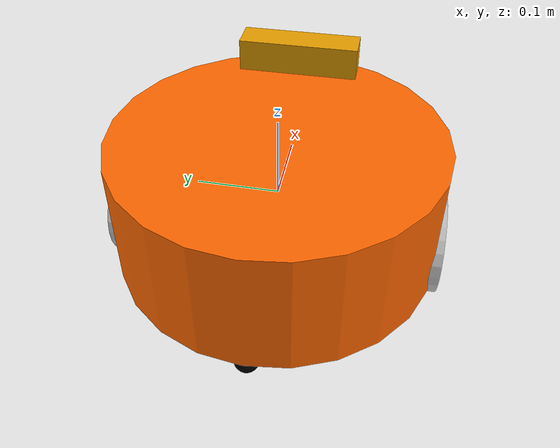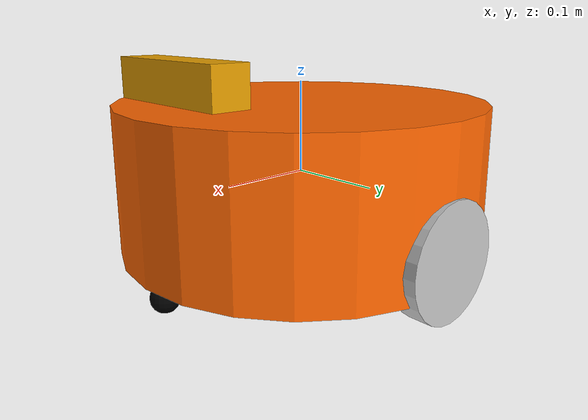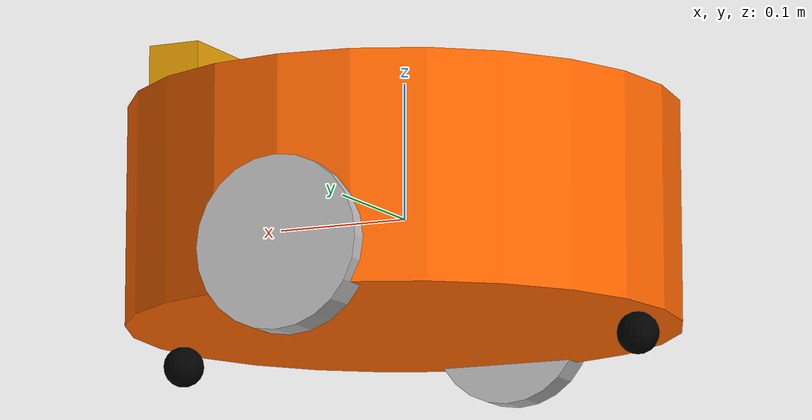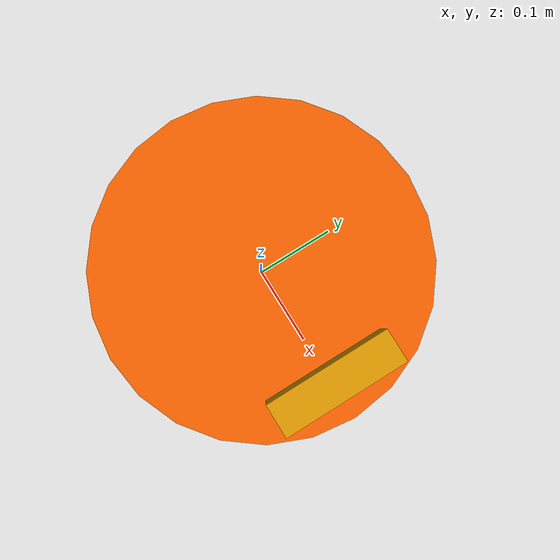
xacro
<?xml version="1.0"?>
<robot name="mbot" xmlns:xacro="http://www.ros.org/wiki/xacro">

    <xacro:include filename="$(find learning_gazebo_harmonic)/urdf/mbot_base_gazebo_harmonic.xacro" />
    <xacro:include filename="$(find learning_gazebo_harmonic)/urdf/sensors/rgbd_gazebo_harmonic.xacro" />

    <xacro:property name="rgbd_offset_x" value="0.15" />
    <xacro:property name="rgbd_offset_y" value="0" />
    <xacro:property name="rgbd_offset_z" value="0.11" />

    <!-- rgbd -->
    <joint name="rgbd_joint" type="fixed">
        <origin xyz="${rgbd_offset_x} ${rgbd_offset_y} ${rgbd_offset_z}" rpy="0 0 0" />
        <parent link="base_link"/>
        <child link="rgbd_link"/>
    </joint>

    <xacro:rgbd_camera prefix="rgbd"/>

    <xacro:mbot_base_gazebo/>

</robot>

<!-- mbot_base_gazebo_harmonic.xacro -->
<robot name="mbot" xmlns:xacro="http://www.ros.org/wiki/xacro">
    <!-- PROPERTY LIST -->
    <xacro:property name="M_PI" value="3.1415926"/>
    <xacro:property name="base_mass"   value="1" />
    <xacro:property name="base_radius" value="0.20"/>
    <xacro:property name="base_length" value="0.16"/>

    <xacro:property name="wheel_mass"   value="0.2" />
    <xacro:property name="wheel_radius" value="0.06"/>
    <xacro:property name="wheel_length" value="0.025"/>
    <xacro:property name="wheel_joint_y" value="0.19"/>
    <xacro:property name="wheel_joint_z" value="0.05"/>

    <xacro:property name="caster_mass"    value="0.2" />
    <xacro:property name="caster_radius"  value="0.015"/> <!-- wheel_radius - ( base_length/2 - wheel_joint_z) -->
    <xacro:property name="caster_joint_x" value="0.18"/>

    <!-- Defining the colors used in this robot -->
    <material name="yellow">
        <color rgba="1 0.4 0 1"/>
    </material>
    <material name="black">
        <color rgba="0 0 0 0.95"/>
    </material>
    <material name="gray">
        <color rgba="0.75 0.75 0.75 1"/>
    </material>

    <!-- Macro for inertia matrix -->
    <xacro:macro name="sphere_inertial_matrix" params="m r">
        <inertial>
            <origin xyz="0 0 0" rpy="0 0 0"/>
            <mass value="${m}" />
            <inertia ixx="${2*m*r*r/5}" ixy="0" ixz="0"
                iyy="${2*m*r*r/5}" iyz="0"
                izz="${2*m*r*r/5}" />
        </inertial>
    </xacro:macro>

    <xacro:macro name="cylinder_inertial_matrix" params="m r h">
        <inertial>
            <origin xyz="0 0 0" rpy="0 0 0"/>
            <mass value="${m}" />
            <inertia ixx="${m*(3*r*r+h*h)/12}" ixy = "0" ixz = "0"
                iyy="${m*(3*r*r+h*h)/12}" iyz = "0"
                izz="${m*r*r/2}" />
        </inertial>
    </xacro:macro>

    <!-- Macro for robot wheel -->
    <xacro:macro name="wheel" params="prefix reflect">
        <joint name="${prefix}_wheel_joint" type="continuous">
            <origin xyz="0 ${reflect*wheel_joint_y} ${-wheel_joint_z}" rpy="0 0 0"/>
            <parent link="base_link"/>
            <child link="${prefix}_wheel_link"/>
            <axis xyz="0 1 0"/>
        </joint>

        <link name="${prefix}_wheel_link">
            <collision>
                <origin xyz="0 0 0" rpy="${M_PI/2} 0 0" />
                <geometry>
                    <cylinder radius="${wheel_radius}" length = "${wheel_length}"/>
                </geometry>
            </collision>

            <visual>
                <origin xyz="0 0 0" rpy="${M_PI/2} 0 0" />
                <geometry>
                    <cylinder radius="${wheel_radius}" length = "${wheel_length}"/>
                </geometry>
                <material name="gray" />
            </visual>

            <xacro:cylinder_inertial_matrix  m="${wheel_mass}" r="${wheel_radius}" h="${wheel_length}" />
        </link>

        <gazebo reference="${prefix}_wheel_link">
            <mu1>100000.0</mu1>
            <mu2>100000.0</mu2>
        </gazebo>
    </xacro:macro>

    <!-- Macro for robot caster -->
    <xacro:macro name="caster" params="prefix reflect">
        <joint name="${prefix}_caster_joint" type="fixed">
            <origin xyz="${reflect*caster_joint_x} 0 ${-(base_length/2 + caster_radius)}" rpy="0 0 0"/>
            <parent link="base_link"/>
            <child link="${prefix}_caster_link"/>
        </joint>

        <link name="${prefix}_caster_link">
            <collision>
                <origin xyz="0 0 0" rpy="0 0 0"/>
                <geometry>
                    <sphere radius="${caster_radius}" />
                </geometry>
            </collision>

            <visual>
                <origin xyz="0 0 0" rpy="0 0 0"/>
                <geometry>
                    <sphere radius="${caster_radius}" />
                </geometry>
                <material name="black" />
            </visual>

            <xacro:sphere_inertial_matrix  m="${caster_mass}" r="${caster_radius}" />
        </link>
    </xacro:macro>

    <xacro:macro name="mbot_base_gazebo">
        <link name="base_footprint"/>

        <joint name="base_footprint_joint" type="fixed">
            <parent link="base_footprint"/>
            <child link="base_link" />
        </joint>

        <link name="base_link">
         	<collision>
                <origin xyz=" 0 0 0" rpy="0 0 0" />
                <geometry>
                    <cylinder length="${base_length}" radius="${base_radius}"/>
                </geometry>
            </collision>

            <visual>
                <origin xyz=" 0 0 0" rpy="0 0 0" />
                <geometry>
                    <cylinder length="${base_length}" radius="${base_radius}"/>
                </geometry>
                <material name="yellow" />
            </visual>

            <xacro:cylinder_inertial_matrix  m="${base_mass}" r="${base_radius}" h="${base_length}" />
        </link>

        <xacro:wheel prefix="left"  reflect="1"/>
        <xacro:wheel prefix="right" reflect="-1"/>

        <xacro:caster prefix="front" reflect="-1"/>
        <xacro:caster prefix="back"  reflect="1"/>

        <!-- controller -->
        <gazebo>
            <plugin filename="libignition-gazebo-diff-drive-system.so"
                    name="ignition::gazebo::systems::DiffDrive">
                  <update_rate>30</update_rate>
                  <left_joint>left_wheel_joint</left_joint>
                  <right_joint>right_wheel_joint</right_joint>
                  <wheel_separation>${wheel_joint_y*2}</wheel_separation>
                  <wheel_radius>${wheel_radius}</wheel_radius>
                  <topic>cmd_vel</topic>
                  <publish_odom>true</publish_odom>
                  <publish_odom_tf>true</publish_odom_tf>
                  <publish_wheel_tf>true</publish_wheel_tf>
                  <odometry_topic>odom</odometry_topic>
                  <odometry_frame>odom</odometry_frame>
                  <robot_base_frame>base_footprint</robot_base_frame>
            </plugin>
            <plugin
				filename="ignition-gazebo-sensors-system"
				name="ignition::gazebo::systems::Sensors">
				<render_engine>ogre2</render_engine>
			</plugin>
			<plugin
				filename="ignition-gazebo-user-commands-system"
				name="ignition::gazebo::systems::UserCommands">
			</plugin>
			<plugin
				filename="ignition-gazebo-scene-broadcaster-system"
				name="ignition::gazebo::systems::SceneBroadcaster">
			</plugin>
			<plugin
				filename="ignition-gazebo-joint-state-publisher-system"
				name="ignition::gazebo::systems::JointStatePublisher"/>
			<plugin
				filename="ignition-gazebo-odometry-publisher-system"
				name="ignition::gazebo::systems::OdometryPublisher">
				<odom_frame>odom</odom_frame>
				<robot_base_frame>base_footprint</robot_base_frame>
			</plugin>
        </gazebo>
    </xacro:macro>

</robot>

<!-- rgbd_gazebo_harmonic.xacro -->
<robot xmlns:xacro="http://www.ros.org/wiki/xacro" name="rgbd_camera">

    <xacro:macro name="rgbd_camera" params="prefix:=camera">
        <!-- Create rgbd reference frame -->
        <!-- Add mesh for rgbd -->
        <link name="${prefix}_link">
            <origin xyz="0 0 0" rpy="0 0 0"/>
            <visual>
                <origin xyz="0 0 0" rpy="0 0 ${M_PI/2}"/>
                <geometry>
                    <box size="0.15 0.04 0.04" />
                </geometry>
            </visual>
            <collision>
                <geometry>
                    <box size="0.07 0.3 0.09"/>
                </geometry>
            </collision>
        </link>

        <joint name="${prefix}_optical_joint" type="fixed">
            <origin xyz="0 0 0" rpy="-1.5708 0 -1.5708"/>
            <parent link="${prefix}_link"/>
            <child link="${prefix}_frame_optical"/>
        </joint>

        <link name="${prefix}_frame_optical"/>

        <gazebo reference="${prefix}_link">
			<sensor name="rgbd_camera" type="rgbd_camera">
				<camera>
					<horizontal_fov>1.047</horizontal_fov>
					<image>
						<width>640</width>
						<height>480</height>
					</image>
					<clip>
						<near>0.1</near>
						<far>100</far>
					</clip>
				</camera>
				<always_on>1</always_on>
				<update_rate>20</update_rate>
				<visualize>true</visualize>
				<topic>rgbd_camera</topic>
				<enable_metrics>true</enable_metrics>
				<ignition_frame_id>${prefix}_link</ignition_frame_id>
			</sensor>
        </gazebo>

    </xacro:macro>
</robot>
